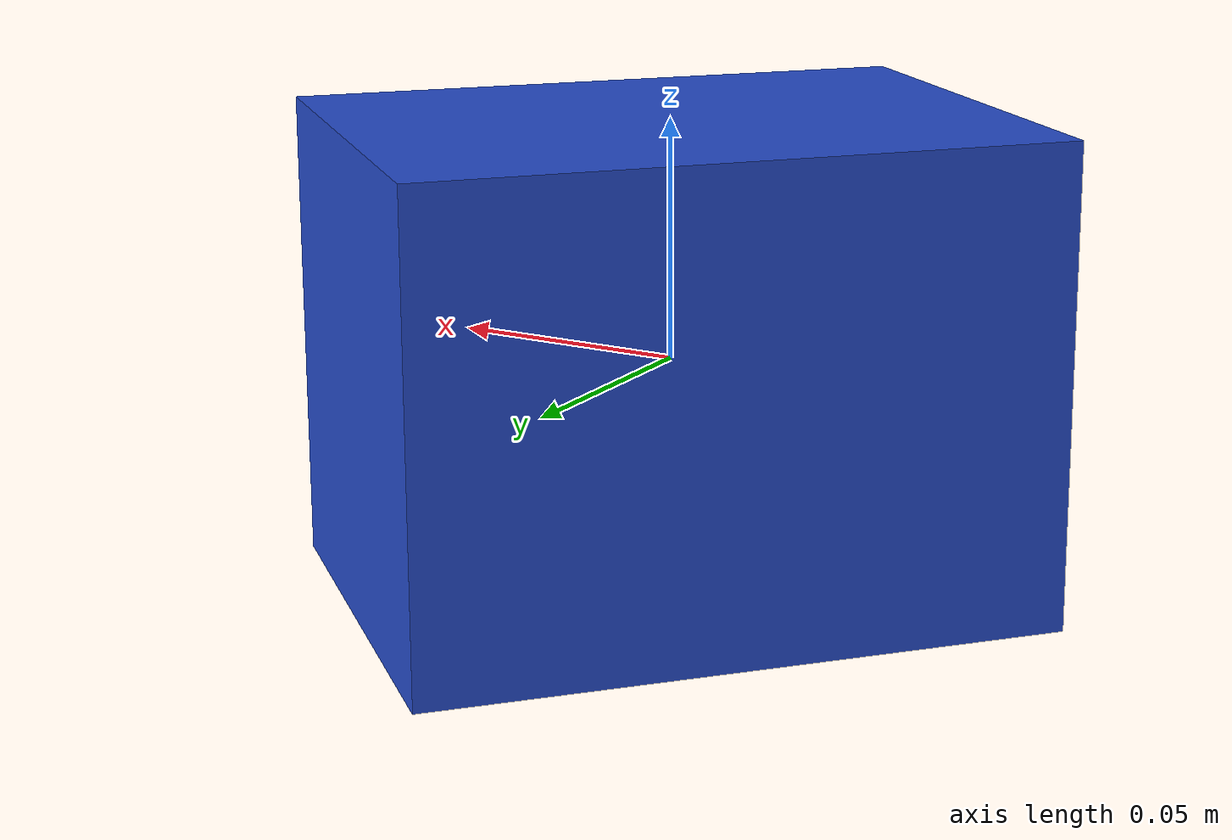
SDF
<sdf version="1.6"><model name="model_24"><static>true</static><link name="link"><pose>0 0 0 0 0 2.4049456798084523</pose><collision name="collision"><geometry><box><size>0.09846221696965606 0.13362416954471007 0.1</size></box></geometry></collision><visual name="visual"><geometry><box><size>0.09846221696965606 0.13362416954471007 0.1</size></box></geometry><material><script><name>Gazebo/Blue</name><uri>file://media/materials/scripts/gazebo.material</uri></script></material></visual></link></model></sdf>
